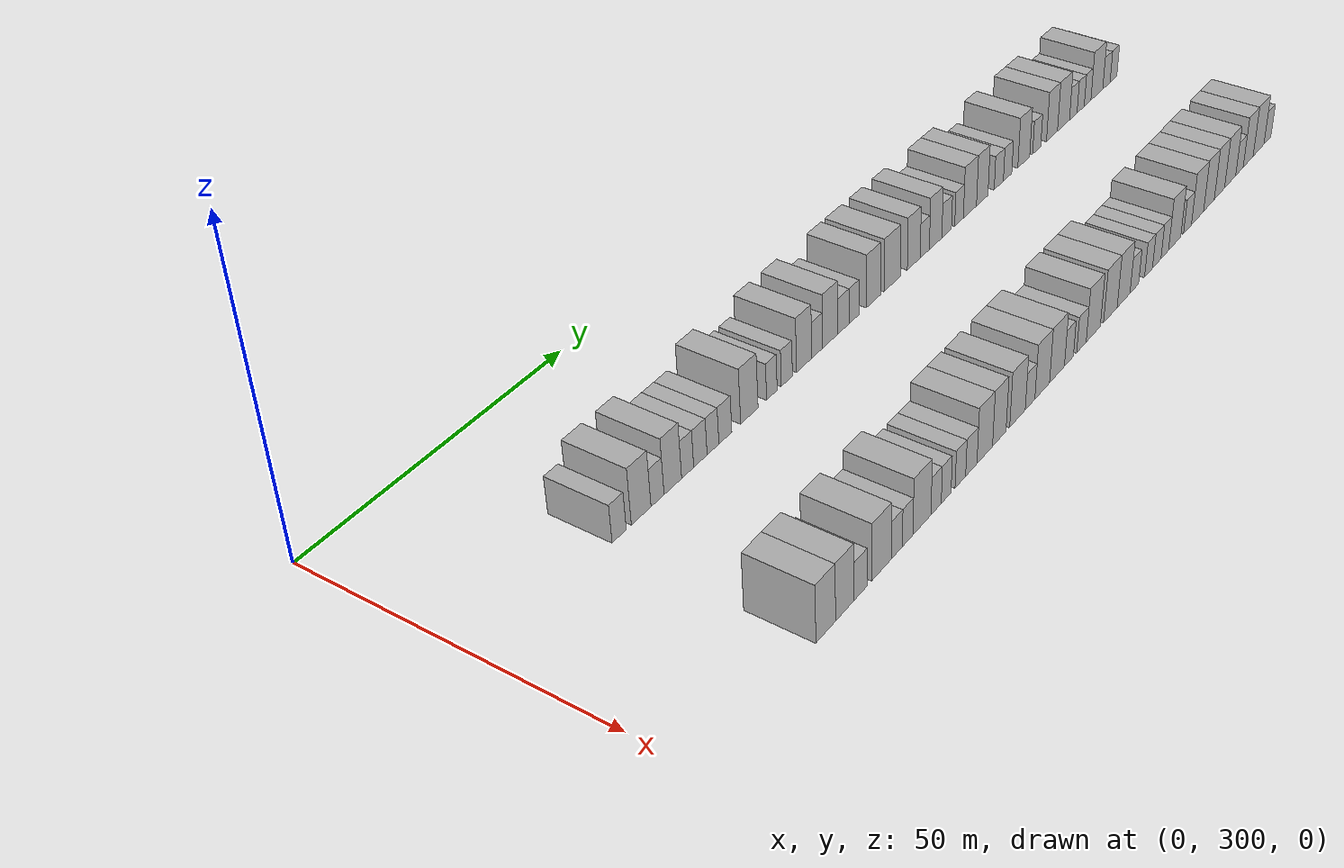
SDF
<sdf version="1.6">
 <world name="default">
  <model name="building_183">
   <static>1</static>
   <pose>25.0000 324.4530 0 0.000000 0.000000 0.000000</pose>
   <link name="link">
    <pose>0 0 3.00 0 0 0</pose>
    <collision name="collision"><geometry><box><size>10.0000 2.7959 6.0000</size></box></geometry></collision>
    <visual name="visual">
     <cast_shadows>0</cast_shadows>
     <geometry><box><size>10.0000 2.7959 6.0000</size></box></geometry>
     <material>
      <script>
       <uri>model://HANNAS_wall/materials/scripts</uri>
       <uri>model://HANNAS_wall/materials/textures</uri>
       <name>vrc/HANNAS_wall</name>
      </script>
     </material>
    </visual>
   </link>
  </model>
  <model name="building_184">
   <static>1</static>
   <pose>25.0000 328.8243 0 0.000000 0.000000 0.000000</pose>
   <link name="link">
    <pose>0 0 4.50 0 0 0</pose>
    <collision name="collision"><geometry><box><size>10.0000 3.9466 9.0000</size></box></geometry></collision>
    <visual name="visual">
     <cast_shadows>0</cast_shadows>
     <geometry><box><size>10.0000 3.9466 9.0000</size></box></geometry>
     <material>
      <script>
       <uri>model://HANNAS_wall/materials/scripts</uri>
       <uri>model://HANNAS_wall/materials/textures</uri>
       <name>vrc/HANNAS_wall</name>
      </script>
     </material>
    </visual>
   </link>
  </model>
  <model name="building_185">
   <static>1</static>
   <pose>25.0000 332.1337 0 0.000000 0.000000 0.000000</pose>
   <link name="link">
    <pose>0 0 3.00 0 0 0</pose>
    <collision name="collision"><geometry><box><size>10.0000 2.6721 6.0000</size></box></geometry></collision>
    <visual name="visual">
     <cast_shadows>0</cast_shadows>
     <geometry><box><size>10.0000 2.6721 6.0000</size></box></geometry>
     <material>
      <script>
       <uri>model://HANNAS_wall/materials/scripts</uri>
       <uri>model://HANNAS_wall/materials/textures</uri>
       <name>vrc/HANNAS_wall</name>
      </script>
     </material>
    </visual>
   </link>
  </model>
  <model name="building_186">
   <static>1</static>
   <pose>25.0000 335.3064 0 0.000000 0.000000 0.000000</pose>
   <link name="link">
    <pose>0 0 4.50 0 0 0</pose>
    <collision name="collision"><geometry><box><size>10.0000 3.6734 9.0000</size></box></geometry></collision>
    <visual name="visual">
     <cast_shadows>0</cast_shadows>
     <geometry><box><size>10.0000 3.6734 9.0000</size></box></geometry>
     <material>
      <script>
       <uri>model://HANNAS_wall/materials/scripts</uri>
       <uri>model://HANNAS_wall/materials/textures</uri>
       <name>vrc/HANNAS_wall</name>
      </script>
     </material>
    </visual>
   </link>
  </model>
  <model name="building_187">
   <static>1</static>
   <pose>25.0000 338.4272 0 0.000000 0.000000 0.000000</pose>
   <link name="link">
    <pose>0 0 3.00 0 0 0</pose>
    <collision name="collision"><geometry><box><size>10.0000 2.5681 6.0000</size></box></geometry></collision>
    <visual name="visual">
     <cast_shadows>0</cast_shadows>
     <geometry><box><size>10.0000 2.5681 6.0000</size></box></geometry>
     <material>
      <script>
       <uri>model://HANNAS_wall/materials/scripts</uri>
       <uri>model://HANNAS_wall/materials/textures</uri>
       <name>vrc/HANNAS_wall</name>
      </script>
     </material>
    </visual>
   </link>
  </model>
  <model name="building_188">
   <static>1</static>
   <pose>25.0000 341.1565 0 0.000000 0.000000 0.000000</pose>
   <link name="link">
    <pose>0 0 3.00 0 0 0</pose>
    <collision name="collision"><geometry><box><size>10.0000 2.8906 6.0000</size></box></geometry></collision>
    <visual name="visual">
     <cast_shadows>0</cast_shadows>
     <geometry><box><size>10.0000 2.8906 6.0000</size></box></geometry>
     <material>
      <script>
       <uri>model://HANNAS_wall/materials/scripts</uri>
       <uri>model://HANNAS_wall/materials/textures</uri>
       <name>vrc/HANNAS_wall</name>
      </script>
     </material>
    </visual>
   </link>
  </model>
  <model name="building_189">
   <static>1</static>
   <pose>25.0000 343.8933 0 0.000000 0.000000 0.000000</pose>
   <link name="link">
    <pose>0 0 3.00 0 0 0</pose>
    <collision name="collision"><geometry><box><size>10.0000 2.5829 6.0000</size></box></geometry></collision>
    <visual name="visual">
     <cast_shadows>0</cast_shadows>
     <geometry><box><size>10.0000 2.5829 6.0000</size></box></geometry>
     <material>
      <script>
       <uri>model://HANNAS_wall/materials/scripts</uri>
       <uri>model://HANNAS_wall/materials/textures</uri>
       <name>vrc/HANNAS_wall</name>
      </script>
     </material>
    </visual>
   </link>
  </model>
  <model name="building_190">
   <static>1</static>
   <pose>25.0000 346.6219 0 0.000000 0.000000 0.000000</pose>
   <link name="link">
    <pose>0 0 3.00 0 0 0</pose>
    <collision name="collision"><geometry><box><size>10.0000 2.8744 6.0000</size></box></geometry></collision>
    <visual name="visual">
     <cast_shadows>0</cast_shadows>
     <geometry><box><size>10.0000 2.8744 6.0000</size></box></geometry>
     <material>
      <script>
       <uri>model://HANNAS_wall/materials/scripts</uri>
       <uri>model://HANNAS_wall/materials/textures</uri>
       <name>vrc/HANNAS_wall</name>
      </script>
     </material>
    </visual>
   </link>
  </model>
  <model name="building_191">
   <static>1</static>
   <pose>25.0000 352.0502 0 0.000000 0.000000 0.000000</pose>
   <link name="link">
    <pose>0 0 4.50 0 0 0</pose>
    <collision name="collision"><geometry><box><size>10.0000 3.9823 9.0000</size></box></geometry></collision>
    <visual name="visual">
     <cast_shadows>0</cast_shadows>
     <geometry><box><size>10.0000 3.9823 9.0000</size></box></geometry>
     <material>
      <script>
       <uri>model://HANNAS_wall/materials/scripts</uri>
       <uri>model://HANNAS_wall/materials/textures</uri>
       <name>vrc/HANNAS_wall</name>
      </script>
     </material>
    </visual>
   </link>
  </model>
  <model name="building_192">
   <static>1</static>
   <pose>25.0000 357.2809 0 0.000000 0.000000 0.000000</pose>
   <link name="link">
    <pose>0 0 3.00 0 0 0</pose>
    <collision name="collision"><geometry><box><size>10.0000 2.4790 6.0000</size></box></geometry></collision>
    <visual name="visual">
     <cast_shadows>0</cast_shadows>
     <geometry><box><size>10.0000 2.4790 6.0000</size></box></geometry>
     <material>
      <script>
       <uri>model://HANNAS_wall/materials/scripts</uri>
       <uri>model://HANNAS_wall/materials/textures</uri>
       <name>vrc/HANNAS_wall</name>
      </script>
     </material>
    </visual>
   </link>
  </model>
  <model name="building_193">
   <static>1</static>
   <pose>25.0000 360.8533 0 0.000000 0.000000 0.000000</pose>
   <link name="link">
    <pose>0 0 3.00 0 0 0</pose>
    <collision name="collision"><geometry><box><size>10.0000 2.6658 6.0000</size></box></geometry></collision>
    <visual name="visual">
     <cast_shadows>0</cast_shadows>
     <geometry><box><size>10.0000 2.6658 6.0000</size></box></geometry>
     <material>
      <script>
       <uri>model://HANNAS_wall/materials/scripts</uri>
       <uri>model://HANNAS_wall/materials/textures</uri>
       <name>vrc/HANNAS_wall</name>
      </script>
     </material>
    </visual>
   </link>
  </model>
  <model name="building_194">
   <static>1</static>
   <pose>25.0000 365.0553 0 0.000000 0.000000 0.000000</pose>
   <link name="link">
    <pose>0 0 4.50 0 0 0</pose>
    <collision name="collision"><geometry><box><size>10.0000 3.7382 9.0000</size></box></geometry></collision>
    <visual name="visual">
     <cast_shadows>0</cast_shadows>
     <geometry><box><size>10.0000 3.7382 9.0000</size></box></geometry>
     <material>
      <script>
       <uri>model://HANNAS_wall/materials/scripts</uri>
       <uri>model://HANNAS_wall/materials/textures</uri>
       <name>vrc/HANNAS_wall</name>
      </script>
     </material>
    </visual>
   </link>
  </model>
  <model name="building_195">
   <static>1</static>
   <pose>25.0000 368.2762 0 0.000000 0.000000 0.000000</pose>
   <link name="link">
    <pose>0 0 3.00 0 0 0</pose>
    <collision name="collision"><geometry><box><size>10.0000 2.7036 6.0000</size></box></geometry></collision>
    <visual name="visual">
     <cast_shadows>0</cast_shadows>
     <geometry><box><size>10.0000 2.7036 6.0000</size></box></geometry>
     <material>
      <script>
       <uri>model://HANNAS_wall/materials/scripts</uri>
       <uri>model://HANNAS_wall/materials/textures</uri>
       <name>vrc/HANNAS_wall</name>
      </script>
     </material>
    </visual>
   </link>
  </model>
  <model name="building_196">
   <static>1</static>
   <pose>25.0000 371.5840 0 0.000000 0.000000 0.000000</pose>
   <link name="link">
    <pose>0 0 4.50 0 0 0</pose>
    <collision name="collision"><geometry><box><size>10.0000 3.9121 9.0000</size></box></geometry></collision>
    <visual name="visual">
     <cast_shadows>0</cast_shadows>
     <geometry><box><size>10.0000 3.9121 9.0000</size></box></geometry>
     <material>
      <script>
       <uri>model://HANNAS_wall/materials/scripts</uri>
       <uri>model://HANNAS_wall/materials/textures</uri>
       <name>vrc/HANNAS_wall</name>
      </script>
     </material>
    </visual>
   </link>
  </model>
  <model name="building_197">
   <static>1</static>
   <pose>25.0000 374.9932 0 0.000000 0.000000 0.000000</pose>
   <link name="link">
    <pose>0 0 3.00 0 0 0</pose>
    <collision name="collision"><geometry><box><size>10.0000 2.9063 6.0000</size></box></geometry></collision>
    <visual name="visual">
     <cast_shadows>0</cast_shadows>
     <geometry><box><size>10.0000 2.9063 6.0000</size></box></geometry>
     <material>
      <script>
       <uri>model://HANNAS_wall/materials/scripts</uri>
       <uri>model://HANNAS_wall/materials/textures</uri>
       <name>vrc/HANNAS_wall</name>
      </script>
     </material>
    </visual>
   </link>
  </model>
  <model name="building_198">
   <static>1</static>
   <pose>25.0000 377.7450 0 0.000000 0.000000 0.000000</pose>
   <link name="link">
    <pose>0 0 3.00 0 0 0</pose>
    <collision name="collision"><geometry><box><size>10.0000 2.5972 6.0000</size></box></geometry></collision>
    <visual name="visual">
     <cast_shadows>0</cast_shadows>
     <geometry><box><size>10.0000 2.5972 6.0000</size></box></geometry>
     <material>
      <script>
       <uri>model://HANNAS_wall/materials/scripts</uri>
       <uri>model://HANNAS_wall/materials/textures</uri>
       <name>vrc/HANNAS_wall</name>
      </script>
     </material>
    </visual>
   </link>
  </model>
  <model name="building_199">
   <static>1</static>
   <pose>25.0000 382.9122 0 0.000000 0.000000 0.000000</pose>
   <link name="link">
    <pose>0 0 4.50 0 0 0</pose>
    <collision name="collision"><geometry><box><size>10.0000 3.7371 9.0000</size></box></geometry></collision>
    <visual name="visual">
     <cast_shadows>0</cast_shadows>
     <geometry><box><size>10.0000 3.7371 9.0000</size></box></geometry>
     <material>
      <script>
       <uri>model://HANNAS_wall/materials/scripts</uri>
       <uri>model://HANNAS_wall/materials/textures</uri>
       <name>vrc/HANNAS_wall</name>
      </script>
     </material>
    </visual>
   </link>
  </model>
  <model name="building_200">
   <static>1</static>
   <pose>25.0000 388.0035 0 0.000000 0.000000 0.000000</pose>
   <link name="link">
    <pose>0 0 4.50 0 0 0</pose>
    <collision name="collision"><geometry><box><size>10.0000 4.4454 9.0000</size></box></geometry></collision>
    <visual name="visual">
     <cast_shadows>0</cast_shadows>
     <geometry><box><size>10.0000 4.4454 9.0000</size></box></geometry>
     <material>
      <script>
       <uri>model://HANNAS_wall/materials/scripts</uri>
       <uri>model://HANNAS_wall/materials/textures</uri>
       <name>vrc/HANNAS_wall</name>
      </script>
     </material>
    </visual>
   </link>
  </model>
  <model name="building_201">
   <static>1</static>
   <pose>25.0000 394.0466 0 0.000000 0.000000 0.000000</pose>
   <link name="link">
    <pose>0 0 4.50 0 0 0</pose>
    <collision name="collision"><geometry><box><size>10.0000 3.6409 9.0000</size></box></geometry></collision>
    <visual name="visual">
     <cast_shadows>0</cast_shadows>
     <geometry><box><size>10.0000 3.6409 9.0000</size></box></geometry>
     <material>
      <script>
       <uri>model://HANNAS_wall/materials/scripts</uri>
       <uri>model://HANNAS_wall/materials/textures</uri>
       <name>vrc/HANNAS_wall</name>
      </script>
     </material>
    </visual>
   </link>
  </model>
  <model name="building_202">
   <static>1</static>
   <pose>25.0000 397.2003 0 0.000000 0.000000 0.000000</pose>
   <link name="link">
    <pose>0 0 3.00 0 0 0</pose>
    <collision name="collision"><geometry><box><size>10.0000 2.6664 6.0000</size></box></geometry></collision>
    <visual name="visual">
     <cast_shadows>0</cast_shadows>
     <geometry><box><size>10.0000 2.6664 6.0000</size></box></geometry>
     <material>
      <script>
       <uri>model://HANNAS_wall/materials/scripts</uri>
       <uri>model://HANNAS_wall/materials/textures</uri>
       <name>vrc/HANNAS_wall</name>
      </script>
     </material>
    </visual>
   </link>
  </model>
  <model name="building_203">
   <static>1</static>
   <pose>25.0000 400.3705 0 0.000000 0.000000 0.000000</pose>
   <link name="link">
    <pose>0 0 4.50 0 0 0</pose>
    <collision name="collision"><geometry><box><size>10.0000 3.6742 9.0000</size></box></geometry></collision>
    <visual name="visual">
     <cast_shadows>0</cast_shadows>
     <geometry><box><size>10.0000 3.6742 9.0000</size></box></geometry>
     <material>
      <script>
       <uri>model://HANNAS_wall/materials/scripts</uri>
       <uri>model://HANNAS_wall/materials/textures</uri>
       <name>vrc/HANNAS_wall</name>
      </script>
     </material>
    </visual>
   </link>
  </model>
  <model name="building_204">
   <static>1</static>
   <pose>25.0000 403.6401 0 0.000000 0.000000 0.000000</pose>
   <link name="link">
    <pose>0 0 3.00 0 0 0</pose>
    <collision name="collision"><geometry><box><size>10.0000 2.8650 6.0000</size></box></geometry></collision>
    <visual name="visual">
     <cast_shadows>0</cast_shadows>
     <geometry><box><size>10.0000 2.8650 6.0000</size></box></geometry>
     <material>
      <script>
       <uri>model://HANNAS_wall/materials/scripts</uri>
       <uri>model://HANNAS_wall/materials/textures</uri>
       <name>vrc/HANNAS_wall</name>
      </script>
     </material>
    </visual>
   </link>
  </model>
  <model name="building_205">
   <static>1</static>
   <pose>25.0000 407.3834 0 0.000000 0.000000 0.000000</pose>
   <link name="link">
    <pose>0 0 3.00 0 0 0</pose>
    <collision name="collision"><geometry><box><size>10.0000 2.6217 6.0000</size></box></geometry></collision>
    <visual name="visual">
     <cast_shadows>0</cast_shadows>
     <geometry><box><size>10.0000 2.6217 6.0000</size></box></geometry>
     <material>
      <script>
       <uri>model://HANNAS_wall/materials/scripts</uri>
       <uri>model://HANNAS_wall/materials/textures</uri>
       <name>vrc/HANNAS_wall</name>
      </script>
     </material>
    </visual>
   </link>
  </model>
  <model name="building_206">
   <static>1</static>
   <pose>25.0000 410.7173 0 0.000000 0.000000 0.000000</pose>
   <link name="link">
    <pose>0 0 4.50 0 0 0</pose>
    <collision name="collision"><geometry><box><size>10.0000 4.0461 9.0000</size></box></geometry></collision>
    <visual name="visual">
     <cast_shadows>0</cast_shadows>
     <geometry><box><size>10.0000 4.0461 9.0000</size></box></geometry>
     <material>
      <script>
       <uri>model://HANNAS_wall/materials/scripts</uri>
       <uri>model://HANNAS_wall/materials/textures</uri>
       <name>vrc/HANNAS_wall</name>
      </script>
     </material>
    </visual>
   </link>
  </model>
  <model name="building_207">
   <static>1</static>
   <pose>25.0000 414.5434 0 0.000000 0.000000 0.000000</pose>
   <link name="link">
    <pose>0 0 4.50 0 0 0</pose>
    <collision name="collision"><geometry><box><size>10.0000 3.6061 9.0000</size></box></geometry></collision>
    <visual name="visual">
     <cast_shadows>0</cast_shadows>
     <geometry><box><size>10.0000 3.6061 9.0000</size></box></geometry>
     <material>
      <script>
       <uri>model://HANNAS_wall/materials/scripts</uri>
       <uri>model://HANNAS_wall/materials/textures</uri>
       <name>vrc/HANNAS_wall</name>
      </script>
     </material>
    </visual>
   </link>
  </model>
  <model name="building_208">
   <static>1</static>
   <pose>25.0000 419.8167 0 0.000000 0.000000 0.000000</pose>
   <link name="link">
    <pose>0 0 3.00 0 0 0</pose>
    <collision name="collision"><geometry><box><size>10.0000 2.9405 6.0000</size></box></geometry></collision>
    <visual name="visual">
     <cast_shadows>0</cast_shadows>
     <geometry><box><size>10.0000 2.9405 6.0000</size></box></geometry>
     <material>
      <script>
       <uri>model://HANNAS_wall/materials/scripts</uri>
       <uri>model://HANNAS_wall/materials/textures</uri>
       <name>vrc/HANNAS_wall</name>
      </script>
     </material>
    </visual>
   </link>
  </model>
  <model name="building_209">
   <static>1</static>
   <pose>25.0000 422.6610 0 0.000000 0.000000 0.000000</pose>
   <link name="link">
    <pose>0 0 3.00 0 0 0</pose>
    <collision name="collision"><geometry><box><size>10.0000 2.7481 6.0000</size></box></geometry></collision>
    <visual name="visual">
     <cast_shadows>0</cast_shadows>
     <geometry><box><size>10.0000 2.7481 6.0000</size></box></geometry>
     <material>
      <script>
       <uri>model://HANNAS_wall/materials/scripts</uri>
       <uri>model://HANNAS_wall/materials/textures</uri>
       <name>vrc/HANNAS_wall</name>
      </script>
     </material>
    </visual>
   </link>
  </model>
  <model name="building_210">
   <static>1</static>
   <pose>25.0000 428.0083 0 0.000000 0.000000 0.000000</pose>
   <link name="link">
    <pose>0 0 4.50 0 0 0</pose>
    <collision name="collision"><geometry><box><size>10.0000 3.9466 9.0000</size></box></geometry></collision>
    <visual name="visual">
     <cast_shadows>0</cast_shadows>
     <geometry><box><size>10.0000 3.9466 9.0000</size></box></geometry>
     <material>
      <script>
       <uri>model://HANNAS_wall/materials/scripts</uri>
       <uri>model://HANNAS_wall/materials/textures</uri>
       <name>vrc/HANNAS_wall</name>
      </script>
     </material>
    </visual>
   </link>
  </model>
  <model name="building_211">
   <static>1</static>
   <pose>25.0000 432.3652 0 0.000000 0.000000 0.000000</pose>
   <link name="link">
    <pose>0 0 3.00 0 0 0</pose>
    <collision name="collision"><geometry><box><size>10.0000 2.7671 6.0000</size></box></geometry></collision>
    <visual name="visual">
     <cast_shadows>0</cast_shadows>
     <geometry><box><size>10.0000 2.7671 6.0000</size></box></geometry>
     <material>
      <script>
       <uri>model://HANNAS_wall/materials/scripts</uri>
       <uri>model://HANNAS_wall/materials/textures</uri>
       <name>vrc/HANNAS_wall</name>
      </script>
     </material>
    </visual>
   </link>
  </model>
  <model name="building_212">
   <static>1</static>
   <pose>25.0000 437.6708 0 0.000000 0.000000 0.000000</pose>
   <link name="link">
    <pose>0 0 4.50 0 0 0</pose>
    <collision name="collision"><geometry><box><size>10.0000 3.8440 9.0000</size></box></geometry></collision>
    <visual name="visual">
     <cast_shadows>0</cast_shadows>
     <geometry><box><size>10.0000 3.8440 9.0000</size></box></geometry>
     <material>
      <script>
       <uri>model://HANNAS_wall/materials/scripts</uri>
       <uri>model://HANNAS_wall/materials/textures</uri>
       <name>vrc/HANNAS_wall</name>
      </script>
     </material>
    </visual>
   </link>
  </model>
  <model name="building_213">
   <static>1</static>
   <pose>25.0000 441.7206 0 0.000000 0.000000 0.000000</pose>
   <link name="link">
    <pose>0 0 4.50 0 0 0</pose>
    <collision name="collision"><geometry><box><size>10.0000 4.2556 9.0000</size></box></geometry></collision>
    <visual name="visual">
     <cast_shadows>0</cast_shadows>
     <geometry><box><size>10.0000 4.2556 9.0000</size></box></geometry>
     <material>
      <script>
       <uri>model://HANNAS_wall/materials/scripts</uri>
       <uri>model://HANNAS_wall/materials/textures</uri>
       <name>vrc/HANNAS_wall</name>
      </script>
     </material>
    </visual>
   </link>
  </model>
  <model name="building_214">
   <static>1</static>
   <pose>25.0000 445.2170 0 0.000000 0.000000 0.000000</pose>
   <link name="link">
    <pose>0 0 3.00 0 0 0</pose>
    <collision name="collision"><geometry><box><size>10.0000 2.7374 6.0000</size></box></geometry></collision>
    <visual name="visual">
     <cast_shadows>0</cast_shadows>
     <geometry><box><size>10.0000 2.7374 6.0000</size></box></geometry>
     <material>
      <script>
       <uri>model://HANNAS_wall/materials/scripts</uri>
       <uri>model://HANNAS_wall/materials/textures</uri>
       <name>vrc/HANNAS_wall</name>
      </script>
     </material>
    </visual>
   </link>
  </model>
  <model name="building_215">
   <static>1</static>
   <pose>25.0000 447.8943 0 0.000000 0.000000 0.000000</pose>
   <link name="link">
    <pose>0 0 3.00 0 0 0</pose>
    <collision name="collision"><geometry><box><size>10.0000 2.6172 6.0000</size></box></geometry></collision>
    <visual name="visual">
     <cast_shadows>0</cast_shadows>
     <geometry><box><size>10.0000 2.6172 6.0000</size></box></geometry>
     <material>
      <script>
       <uri>model://HANNAS_wall/materials/scripts</uri>
       <uri>model://HANNAS_wall/materials/textures</uri>
       <name>vrc/HANNAS_wall</name>
      </script>
     </material>
    </visual>
   </link>
  </model>
  <model name="building_216">
   <static>1</static>
   <pose>25.0000 450.4375 0 0.000000 0.000000 0.000000</pose>
   <link name="link">
    <pose>0 0 3.00 0 0 0</pose>
    <collision name="collision"><geometry><box><size>10.0000 2.4692 6.0000</size></box></geometry></collision>
    <visual name="visual">
     <cast_shadows>0</cast_shadows>
     <geometry><box><size>10.0000 2.4692 6.0000</size></box></geometry>
     <material>
      <script>
       <uri>model://HANNAS_wall/materials/scripts</uri>
       <uri>model://HANNAS_wall/materials/textures</uri>
       <name>vrc/HANNAS_wall</name>
      </script>
     </material>
    </visual>
   </link>
  </model>
  <model name="building_217">
   <static>1</static>
   <pose>25.0000 453.8956 0 0.000000 0.000000 0.000000</pose>
   <link name="link">
    <pose>0 0 4.50 0 0 0</pose>
    <collision name="collision"><geometry><box><size>10.0000 4.4469 9.0000</size></box></geometry></collision>
    <visual name="visual">
     <cast_shadows>0</cast_shadows>
     <geometry><box><size>10.0000 4.4469 9.0000</size></box></geometry>
     <material>
      <script>
       <uri>model://HANNAS_wall/materials/scripts</uri>
       <uri>model://HANNAS_wall/materials/textures</uri>
       <name>vrc/HANNAS_wall</name>
      </script>
     </material>
    </visual>
   </link>
  </model>
  <model name="building_218">
   <static>1</static>
   <pose>25.0000 457.5079 0 0.000000 0.000000 0.000000</pose>
   <link name="link">
    <pose>0 0 3.00 0 0 0</pose>
    <collision name="collision"><geometry><box><size>10.0000 2.7778 6.0000</size></box></geometry></collision>
    <visual name="visual">
     <cast_shadows>0</cast_shadows>
     <geometry><box><size>10.0000 2.7778 6.0000</size></box></geometry>
     <material>
      <script>
       <uri>model://HANNAS_wall/materials/scripts</uri>
       <uri>model://HANNAS_wall/materials/textures</uri>
       <name>vrc/HANNAS_wall</name>
      </script>
     </material>
    </visual>
   </link>
  </model>
  <model name="building_219">
   <static>1</static>
   <pose>25.0000 460.2032 0 0.000000 0.000000 0.000000</pose>
   <link name="link">
    <pose>0 0 3.00 0 0 0</pose>
    <collision name="collision"><geometry><box><size>10.0000 2.6128 6.0000</size></box></geometry></collision>
    <visual name="visual">
     <cast_shadows>0</cast_shadows>
     <geometry><box><size>10.0000 2.6128 6.0000</size></box></geometry>
     <material>
      <script>
       <uri>model://HANNAS_wall/materials/scripts</uri>
       <uri>model://HANNAS_wall/materials/textures</uri>
       <name>vrc/HANNAS_wall</name>
      </script>
     </material>
    </visual>
   </link>
  </model>
  <model name="building_425">
   <static>1</static>
   <pose>55.0000 324.1986 0 0.000000 0.000000 0.000000</pose>
   <link name="link">
    <pose>0 0 4.50 0 0 0</pose>
    <collision name="collision"><geometry><box><size>10.0000 4.1310 9.0000</size></box></geometry></collision>
    <visual name="visual">
     <cast_shadows>0</cast_shadows>
     <geometry><box><size>10.0000 4.1310 9.0000</size></box></geometry>
     <material>
      <script>
       <uri>model://HANNAS_wall/materials/scripts</uri>
       <uri>model://HANNAS_wall/materials/textures</uri>
       <name>vrc/HANNAS_wall</name>
      </script>
     </material>
    </visual>
   </link>
  </model>
  <model name="building_426">
   <static>1</static>
   <pose>55.0000 328.2507 0 0.000000 0.000000 0.000000</pose>
   <link name="link">
    <pose>0 0 4.50 0 0 0</pose>
    <collision name="collision"><geometry><box><size>10.0000 3.9731 9.0000</size></box></geometry></collision>
    <visual name="visual">
     <cast_shadows>0</cast_shadows>
     <geometry><box><size>10.0000 3.9731 9.0000</size></box></geometry>
     <material>
      <script>
       <uri>model://HANNAS_wall/materials/scripts</uri>
       <uri>model://HANNAS_wall/materials/textures</uri>
       <name>vrc/HANNAS_wall</name>
      </script>
     </material>
    </visual>
   </link>
  </model>
  <model name="building_427">
   <static>1</static>
   <pose>55.0000 331.7019 0 0.000000 0.000000 0.000000</pose>
   <link name="link">
    <pose>0 0 3.00 0 0 0</pose>
    <collision name="collision"><geometry><box><size>10.0000 2.9294 6.0000</size></box></geometry></collision>
    <visual name="visual">
     <cast_shadows>0</cast_shadows>
     <geometry><box><size>10.0000 2.9294 6.0000</size></box></geometry>
     <material>
      <script>
       <uri>model://HANNAS_wall/materials/scripts</uri>
       <uri>model://HANNAS_wall/materials/textures</uri>
       <name>vrc/HANNAS_wall</name>
      </script>
     </material>
    </visual>
   </link>
  </model>
  <model name="building_428">
   <static>1</static>
   <pose>55.0000 336.3575 0 0.000000 0.000000 0.000000</pose>
   <link name="link">
    <pose>0 0 4.50 0 0 0</pose>
    <collision name="collision"><geometry><box><size>10.0000 4.3818 9.0000</size></box></geometry></collision>
    <visual name="visual">
     <cast_shadows>0</cast_shadows>
     <geometry><box><size>10.0000 4.3818 9.0000</size></box></geometry>
     <material>
      <script>
       <uri>model://HANNAS_wall/materials/scripts</uri>
       <uri>model://HANNAS_wall/materials/textures</uri>
       <name>vrc/HANNAS_wall</name>
      </script>
     </material>
    </visual>
   </link>
  </model>
  <model name="building_429">
   <static>1</static>
   <pose>55.0000 339.8276 0 0.000000 0.000000 0.000000</pose>
   <link name="link">
    <pose>0 0 3.00 0 0 0</pose>
    <collision name="collision"><geometry><box><size>10.0000 2.5583 6.0000</size></box></geometry></collision>
    <visual name="visual">
     <cast_shadows>0</cast_shadows>
     <geometry><box><size>10.0000 2.5583 6.0000</size></box></geometry>
     <material>
      <script>
       <uri>model://HANNAS_wall/materials/scripts</uri>
       <uri>model://HANNAS_wall/materials/textures</uri>
       <name>vrc/HANNAS_wall</name>
      </script>
     </material>
    </visual>
   </link>
  </model>
  <model name="building_430">
   <static>1</static>
   <pose>55.0000 342.3475 0 0.000000 0.000000 0.000000</pose>
   <link name="link">
    <pose>0 0 3.00 0 0 0</pose>
    <collision name="collision"><geometry><box><size>10.0000 2.4814 6.0000</size></box></geometry></collision>
    <visual name="visual">
     <cast_shadows>0</cast_shadows>
     <geometry><box><size>10.0000 2.4814 6.0000</size></box></geometry>
     <material>
      <script>
       <uri>model://HANNAS_wall/materials/scripts</uri>
       <uri>model://HANNAS_wall/materials/textures</uri>
       <name>vrc/HANNAS_wall</name>
      </script>
     </material>
    </visual>
   </link>
  </model>
  <model name="building_431">
   <static>1</static>
   <pose>55.0000 345.7428 0 0.000000 0.000000 0.000000</pose>
   <link name="link">
    <pose>0 0 4.50 0 0 0</pose>
    <collision name="collision"><geometry><box><size>10.0000 4.3092 9.0000</size></box></geometry></collision>
    <visual name="visual">
     <cast_shadows>0</cast_shadows>
     <geometry><box><size>10.0000 4.3092 9.0000</size></box></geometry>
     <material>
      <script>
       <uri>model://HANNAS_wall/materials/scripts</uri>
       <uri>model://HANNAS_wall/materials/textures</uri>
       <name>vrc/HANNAS_wall</name>
      </script>
     </material>
    </visual>
   </link>
  </model>
  <model name="building_432">
   <static>1</static>
   <pose>55.0000 349.1672 0 0.000000 0.000000 0.000000</pose>
   <link name="link">
    <pose>0 0 3.00 0 0 0</pose>
    <collision name="collision"><geometry><box><size>10.0000 2.5396 6.0000</size></box></geometry></collision>
    <visual name="visual">
     <cast_shadows>0</cast_shadows>
     <geometry><box><size>10.0000 2.5396 6.0000</size></box></geometry>
     <material>
      <script>
       <uri>model://HANNAS_wall/materials/scripts</uri>
       <uri>model://HANNAS_wall/materials/textures</uri>
       <name>vrc/HANNAS_wall</name>
      </script>
     </material>
    </visual>
   </link>
  </model>
  <model name="building_433">
   <static>1</static>
   <pose>55.0000 351.6518 0 0.000000 0.000000 0.000000</pose>
   <link name="link">
    <pose>0 0 3.00 0 0 0</pose>
    <collision name="collision"><geometry><box><size>10.0000 2.4297 6.0000</size></box></geometry></collision>
    <visual name="visual">
     <cast_shadows>0</cast_shadows>
     <geometry><box><size>10.0000 2.4297 6.0000</size></box></geometry>
     <material>
      <script>
       <uri>model://HANNAS_wall/materials/scripts</uri>
       <uri>model://HANNAS_wall/materials/textures</uri>
       <name>vrc/HANNAS_wall</name>
      </script>
     </material>
    </visual>
   </link>
  </model>
  <model name="building_434">
   <static>1</static>
   <pose>55.0000 355.2017 0 0.000000 0.000000 0.000000</pose>
   <link name="link">
    <pose>0 0 3.00 0 0 0</pose>
    <collision name="collision"><geometry><box><size>10.0000 2.6699 6.0000</size></box></geometry></collision>
    <visual name="visual">
     <cast_shadows>0</cast_shadows>
     <geometry><box><size>10.0000 2.6699 6.0000</size></box></geometry>
     <material>
      <script>
       <uri>model://HANNAS_wall/materials/scripts</uri>
       <uri>model://HANNAS_wall/materials/textures</uri>
       <name>vrc/HANNAS_wall</name>
      </script>
     </material>
    </visual>
   </link>
  </model>
  <model name="building_435">
   <static>1</static>
   <pose>55.0000 357.9917 0 0.000000 0.000000 0.000000</pose>
   <link name="link">
    <pose>0 0 3.00 0 0 0</pose>
    <collision name="collision"><geometry><box><size>10.0000 2.9101 6.0000</size></box></geometry></collision>
    <visual name="visual">
     <cast_shadows>0</cast_shadows>
     <geometry><box><size>10.0000 2.9101 6.0000</size></box></geometry>
     <material>
      <script>
       <uri>model://HANNAS_wall/materials/scripts</uri>
       <uri>model://HANNAS_wall/materials/textures</uri>
       <name>vrc/HANNAS_wall</name>
      </script>
     </material>
    </visual>
   </link>
  </model>
  <model name="building_436">
   <static>1</static>
   <pose>55.0000 361.4848 0 0.000000 0.000000 0.000000</pose>
   <link name="link">
    <pose>0 0 4.50 0 0 0</pose>
    <collision name="collision"><geometry><box><size>10.0000 4.0761 9.0000</size></box></geometry></collision>
    <visual name="visual">
     <cast_shadows>0</cast_shadows>
     <geometry><box><size>10.0000 4.0761 9.0000</size></box></geometry>
     <material>
      <script>
       <uri>model://HANNAS_wall/materials/scripts</uri>
       <uri>model://HANNAS_wall/materials/textures</uri>
       <name>vrc/HANNAS_wall</name>
      </script>
     </material>
    </visual>
   </link>
  </model>
  <model name="building_437">
   <static>1</static>
   <pose>55.0000 365.3266 0 0.000000 0.000000 0.000000</pose>
   <link name="link">
    <pose>0 0 4.50 0 0 0</pose>
    <collision name="collision"><geometry><box><size>10.0000 3.6076 9.0000</size></box></geometry></collision>
    <visual name="visual">
     <cast_shadows>0</cast_shadows>
     <geometry><box><size>10.0000 3.6076 9.0000</size></box></geometry>
     <material>
      <script>
       <uri>model://HANNAS_wall/materials/scripts</uri>
       <uri>model://HANNAS_wall/materials/textures</uri>
       <name>vrc/HANNAS_wall</name>
      </script>
     </material>
    </visual>
   </link>
  </model>
  <model name="building_438">
   <static>1</static>
   <pose>55.0000 370.2720 0 0.000000 0.000000 0.000000</pose>
   <link name="link">
    <pose>0 0 4.50 0 0 0</pose>
    <collision name="collision"><geometry><box><size>10.0000 4.2832 9.0000</size></box></geometry></collision>
    <visual name="visual">
     <cast_shadows>0</cast_shadows>
     <geometry><box><size>10.0000 4.2832 9.0000</size></box></geometry>
     <material>
      <script>
       <uri>model://HANNAS_wall/materials/scripts</uri>
       <uri>model://HANNAS_wall/materials/textures</uri>
       <name>vrc/HANNAS_wall</name>
      </script>
     </material>
    </visual>
   </link>
  </model>
  <model name="building_439">
   <static>1</static>
   <pose>55.0000 373.7590 0 0.000000 0.000000 0.000000</pose>
   <link name="link">
    <pose>0 0 3.00 0 0 0</pose>
    <collision name="collision"><geometry><box><size>10.0000 2.6906 6.0000</size></box></geometry></collision>
    <visual name="visual">
     <cast_shadows>0</cast_shadows>
     <geometry><box><size>10.0000 2.6906 6.0000</size></box></geometry>
     <material>
      <script>
       <uri>model://HANNAS_wall/materials/scripts</uri>
       <uri>model://HANNAS_wall/materials/textures</uri>
       <name>vrc/HANNAS_wall</name>
      </script>
     </material>
    </visual>
   </link>
  </model>
  <model name="building_440">
   <static>1</static>
   <pose>55.0000 377.2001 0 0.000000 0.000000 0.000000</pose>
   <link name="link">
    <pose>0 0 4.50 0 0 0</pose>
    <collision name="collision"><geometry><box><size>10.0000 4.1916 9.0000</size></box></geometry></collision>
    <visual name="visual">
     <cast_shadows>0</cast_shadows>
     <geometry><box><size>10.0000 4.1916 9.0000</size></box></geometry>
     <material>
      <script>
       <uri>model://HANNAS_wall/materials/scripts</uri>
       <uri>model://HANNAS_wall/materials/textures</uri>
       <name>vrc/HANNAS_wall</name>
      </script>
     </material>
    </visual>
   </link>
  </model>
  <model name="building_441">
   <static>1</static>
   <pose>55.0000 381.4777 0 0.000000 0.000000 0.000000</pose>
   <link name="link">
    <pose>0 0 4.50 0 0 0</pose>
    <collision name="collision"><geometry><box><size>10.0000 4.3636 9.0000</size></box></geometry></collision>
    <visual name="visual">
     <cast_shadows>0</cast_shadows>
     <geometry><box><size>10.0000 4.3636 9.0000</size></box></geometry>
     <material>
      <script>
       <uri>model://HANNAS_wall/materials/scripts</uri>
       <uri>model://HANNAS_wall/materials/textures</uri>
       <name>vrc/HANNAS_wall</name>
      </script>
     </material>
    </visual>
   </link>
  </model>
  <model name="building_442">
   <static>1</static>
   <pose>55.0000 384.9890 0 0.000000 0.000000 0.000000</pose>
   <link name="link">
    <pose>0 0 3.00 0 0 0</pose>
    <collision name="collision"><geometry><box><size>10.0000 2.6590 6.0000</size></box></geometry></collision>
    <visual name="visual">
     <cast_shadows>0</cast_shadows>
     <geometry><box><size>10.0000 2.6590 6.0000</size></box></geometry>
     <material>
      <script>
       <uri>model://HANNAS_wall/materials/scripts</uri>
       <uri>model://HANNAS_wall/materials/textures</uri>
       <name>vrc/HANNAS_wall</name>
      </script>
     </material>
    </visual>
   </link>
  </model>
  <model name="building_443">
   <static>1</static>
   <pose>55.0000 388.7585 0 0.000000 0.000000 0.000000</pose>
   <link name="link">
    <pose>0 0 3.00 0 0 0</pose>
    <collision name="collision"><geometry><box><size>10.0000 2.8799 6.0000</size></box></geometry></collision>
    <visual name="visual">
     <cast_shadows>0</cast_shadows>
     <geometry><box><size>10.0000 2.8799 6.0000</size></box></geometry>
     <material>
      <script>
       <uri>model://HANNAS_wall/materials/scripts</uri>
       <uri>model://HANNAS_wall/materials/textures</uri>
       <name>vrc/HANNAS_wall</name>
      </script>
     </material>
    </visual>
   </link>
  </model>
  <model name="building_444">
   <static>1</static>
   <pose>55.0000 392.3841 0 0.000000 0.000000 0.000000</pose>
   <link name="link">
    <pose>0 0 4.50 0 0 0</pose>
    <collision name="collision"><geometry><box><size>10.0000 4.3715 9.0000</size></box></geometry></collision>
    <visual name="visual">
     <cast_shadows>0</cast_shadows>
     <geometry><box><size>10.0000 4.3715 9.0000</size></box></geometry>
     <material>
      <script>
       <uri>model://HANNAS_wall/materials/scripts</uri>
       <uri>model://HANNAS_wall/materials/textures</uri>
       <name>vrc/HANNAS_wall</name>
      </script>
     </material>
    </visual>
   </link>
  </model>
  <model name="building_445">
   <static>1</static>
   <pose>55.0000 397.7430 0 0.000000 0.000000 0.000000</pose>
   <link name="link">
    <pose>0 0 4.50 0 0 0</pose>
    <collision name="collision"><geometry><box><size>10.0000 4.3463 9.0000</size></box></geometry></collision>
    <visual name="visual">
     <cast_shadows>0</cast_shadows>
     <geometry><box><size>10.0000 4.3463 9.0000</size></box></geometry>
     <material>
      <script>
       <uri>model://HANNAS_wall/materials/scripts</uri>
       <uri>model://HANNAS_wall/materials/textures</uri>
       <name>vrc/HANNAS_wall</name>
      </script>
     </material>
    </visual>
   </link>
  </model>
  <model name="building_446">
   <static>1</static>
   <pose>55.0000 402.0016 0 0.000000 0.000000 0.000000</pose>
   <link name="link">
    <pose>0 0 4.50 0 0 0</pose>
    <collision name="collision"><geometry><box><size>10.0000 4.1708 9.0000</size></box></geometry></collision>
    <visual name="visual">
     <cast_shadows>0</cast_shadows>
     <geometry><box><size>10.0000 4.1708 9.0000</size></box></geometry>
     <material>
      <script>
       <uri>model://HANNAS_wall/materials/scripts</uri>
       <uri>model://HANNAS_wall/materials/textures</uri>
       <name>vrc/HANNAS_wall</name>
      </script>
     </material>
    </visual>
   </link>
  </model>
  <model name="building_447">
   <static>1</static>
   <pose>55.0000 405.5051 0 0.000000 0.000000 0.000000</pose>
   <link name="link">
    <pose>0 0 3.00 0 0 0</pose>
    <collision name="collision"><geometry><box><size>10.0000 2.8362 6.0000</size></box></geometry></collision>
    <visual name="visual">
     <cast_shadows>0</cast_shadows>
     <geometry><box><size>10.0000 2.8362 6.0000</size></box></geometry>
     <material>
      <script>
       <uri>model://HANNAS_wall/materials/scripts</uri>
       <uri>model://HANNAS_wall/materials/textures</uri>
       <name>vrc/HANNAS_wall</name>
      </script>
     </material>
    </visual>
   </link>
  </model>
  <model name="building_448">
   <static>1</static>
   <pose>55.0000 410.2640 0 0.000000 0.000000 0.000000</pose>
   <link name="link">
    <pose>0 0 3.00 0 0 0</pose>
    <collision name="collision"><geometry><box><size>10.0000 2.6816 6.0000</size></box></geometry></collision>
    <visual name="visual">
     <cast_shadows>0</cast_shadows>
     <geometry><box><size>10.0000 2.6816 6.0000</size></box></geometry>
     <material>
      <script>
       <uri>model://HANNAS_wall/materials/scripts</uri>
       <uri>model://HANNAS_wall/materials/textures</uri>
       <name>vrc/HANNAS_wall</name>
      </script>
     </material>
    </visual>
   </link>
  </model>
  <model name="building_449">
   <static>1</static>
   <pose>55.0000 413.0694 0 0.000000 0.000000 0.000000</pose>
   <link name="link">
    <pose>0 0 3.00 0 0 0</pose>
    <collision name="collision"><geometry><box><size>10.0000 2.9291 6.0000</size></box></geometry></collision>
    <visual name="visual">
     <cast_shadows>0</cast_shadows>
     <geometry><box><size>10.0000 2.9291 6.0000</size></box></geometry>
     <material>
      <script>
       <uri>model://HANNAS_wall/materials/scripts</uri>
       <uri>model://HANNAS_wall/materials/textures</uri>
       <name>vrc/HANNAS_wall</name>
      </script>
     </material>
    </visual>
   </link>
  </model>
  <model name="building_450">
   <static>1</static>
   <pose>55.0000 415.8365 0 0.000000 0.000000 0.000000</pose>
   <link name="link">
    <pose>0 0 3.00 0 0 0</pose>
    <collision name="collision"><geometry><box><size>10.0000 2.6049 6.0000</size></box></geometry></collision>
    <visual name="visual">
     <cast_shadows>0</cast_shadows>
     <geometry><box><size>10.0000 2.6049 6.0000</size></box></geometry>
     <material>
      <script>
       <uri>model://HANNAS_wall/materials/scripts</uri>
       <uri>model://HANNAS_wall/materials/textures</uri>
       <name>vrc/HANNAS_wall</name>
      </script>
     </material>
    </visual>
   </link>
  </model>
  <model name="building_451">
   <static>1</static>
   <pose>55.0000 419.2997 0 0.000000 0.000000 0.000000</pose>
   <link name="link">
    <pose>0 0 4.50 0 0 0</pose>
    <collision name="collision"><geometry><box><size>10.0000 4.3215 9.0000</size></box></geometry></collision>
    <visual name="visual">
     <cast_shadows>0</cast_shadows>
     <geometry><box><size>10.0000 4.3215 9.0000</size></box></geometry>
     <material>
      <script>
       <uri>model://HANNAS_wall/materials/scripts</uri>
       <uri>model://HANNAS_wall/materials/textures</uri>
       <name>vrc/HANNAS_wall</name>
      </script>
     </material>
    </visual>
   </link>
  </model>
  <model name="building_452">
   <static>1</static>
   <pose>55.0000 423.8899 0 0.000000 0.000000 0.000000</pose>
   <link name="link">
    <pose>0 0 3.00 0 0 0</pose>
    <collision name="collision"><geometry><box><size>10.0000 2.8589 6.0000</size></box></geometry></collision>
    <visual name="visual">
     <cast_shadows>0</cast_shadows>
     <geometry><box><size>10.0000 2.8589 6.0000</size></box></geometry>
     <material>
      <script>
       <uri>model://HANNAS_wall/materials/scripts</uri>
       <uri>model://HANNAS_wall/materials/textures</uri>
       <name>vrc/HANNAS_wall</name>
      </script>
     </material>
    </visual>
   </link>
  </model>
  <model name="building_453">
   <static>1</static>
   <pose>55.0000 427.5524 0 0.000000 0.000000 0.000000</pose>
   <link name="link">
    <pose>0 0 4.50 0 0 0</pose>
    <collision name="collision"><geometry><box><size>10.0000 4.4660 9.0000</size></box></geometry></collision>
    <visual name="visual">
     <cast_shadows>0</cast_shadows>
     <geometry><box><size>10.0000 4.4660 9.0000</size></box></geometry>
     <material>
      <script>
       <uri>model://HANNAS_wall/materials/scripts</uri>
       <uri>model://HANNAS_wall/materials/textures</uri>
       <name>vrc/HANNAS_wall</name>
      </script>
     </material>
    </visual>
   </link>
  </model>
  <model name="building_454">
   <static>1</static>
   <pose>55.0000 431.8089 0 0.000000 0.000000 0.000000</pose>
   <link name="link">
    <pose>0 0 4.50 0 0 0</pose>
    <collision name="collision"><geometry><box><size>10.0000 4.0470 9.0000</size></box></geometry></collision>
    <visual name="visual">
     <cast_shadows>0</cast_shadows>
     <geometry><box><size>10.0000 4.0470 9.0000</size></box></geometry>
     <material>
      <script>
       <uri>model://HANNAS_wall/materials/scripts</uri>
       <uri>model://HANNAS_wall/materials/textures</uri>
       <name>vrc/HANNAS_wall</name>
      </script>
     </material>
    </visual>
   </link>
  </model>
  <model name="building_455">
   <static>1</static>
   <pose>55.0000 435.7930 0 0.000000 0.000000 0.000000</pose>
   <link name="link">
    <pose>0 0 4.50 0 0 0</pose>
    <collision name="collision"><geometry><box><size>10.0000 3.9212 9.0000</size></box></geometry></collision>
    <visual name="visual">
     <cast_shadows>0</cast_shadows>
     <geometry><box><size>10.0000 3.9212 9.0000</size></box></geometry>
     <material>
      <script>
       <uri>model://HANNAS_wall/materials/scripts</uri>
       <uri>model://HANNAS_wall/materials/textures</uri>
       <name>vrc/HANNAS_wall</name>
      </script>
     </material>
    </visual>
   </link>
  </model>
  <model name="building_456">
   <static>1</static>
   <pose>55.0000 439.9235 0 0.000000 0.000000 0.000000</pose>
   <link name="link">
    <pose>0 0 4.50 0 0 0</pose>
    <collision name="collision"><geometry><box><size>10.0000 4.3399 9.0000</size></box></geometry></collision>
    <visual name="visual">
     <cast_shadows>0</cast_shadows>
     <geometry><box><size>10.0000 4.3399 9.0000</size></box></geometry>
     <material>
      <script>
       <uri>model://HANNAS_wall/materials/scripts</uri>
       <uri>model://HANNAS_wall/materials/textures</uri>
       <name>vrc/HANNAS_wall</name>
      </script>
     </material>
    </visual>
   </link>
  </model>
  <model name="building_457">
   <static>1</static>
   <pose>55.0000 443.5877 0 0.000000 0.000000 0.000000</pose>
   <link name="link">
    <pose>0 0 3.00 0 0 0</pose>
    <collision name="collision"><geometry><box><size>10.0000 2.9884 6.0000</size></box></geometry></collision>
    <visual name="visual">
     <cast_shadows>0</cast_shadows>
     <geometry><box><size>10.0000 2.9884 6.0000</size></box></geometry>
     <material>
      <script>
       <uri>model://HANNAS_wall/materials/scripts</uri>
       <uri>model://HANNAS_wall/materials/textures</uri>
       <name>vrc/HANNAS_wall</name>
      </script>
     </material>
    </visual>
   </link>
  </model>
  <model name="building_458">
   <static>1</static>
   <pose>55.0000 447.0811 0 0.000000 0.000000 0.000000</pose>
   <link name="link">
    <pose>0 0 4.50 0 0 0</pose>
    <collision name="collision"><geometry><box><size>10.0000 3.9984 9.0000</size></box></geometry></collision>
    <visual name="visual">
     <cast_shadows>0</cast_shadows>
     <geometry><box><size>10.0000 3.9984 9.0000</size></box></geometry>
     <material>
      <script>
       <uri>model://HANNAS_wall/materials/scripts</uri>
       <uri>model://HANNAS_wall/materials/textures</uri>
       <name>vrc/HANNAS_wall</name>
      </script>
     </material>
    </visual>
   </link>
  </model>
  <model name="building_459">
   <static>1</static>
   <pose>55.0000 451.3100 0 0.000000 0.000000 0.000000</pose>
   <link name="link">
    <pose>0 0 4.50 0 0 0</pose>
    <collision name="collision"><geometry><box><size>10.0000 4.4594 9.0000</size></box></geometry></collision>
    <visual name="visual">
     <cast_shadows>0</cast_shadows>
     <geometry><box><size>10.0000 4.4594 9.0000</size></box></geometry>
     <material>
      <script>
       <uri>model://HANNAS_wall/materials/scripts</uri>
       <uri>model://HANNAS_wall/materials/textures</uri>
       <name>vrc/HANNAS_wall</name>
      </script>
     </material>
    </visual>
   </link>
  </model>
  <model name="building_460">
   <static>1</static>
   <pose>55.0000 454.9808 0 0.000000 0.000000 0.000000</pose>
   <link name="link">
    <pose>0 0 3.00 0 0 0</pose>
    <collision name="collision"><geometry><box><size>10.0000 2.8823 6.0000</size></box></geometry></collision>
    <visual name="visual">
     <cast_shadows>0</cast_shadows>
     <geometry><box><size>10.0000 2.8823 6.0000</size></box></geometry>
     <material>
      <script>
       <uri>model://HANNAS_wall/materials/scripts</uri>
       <uri>model://HANNAS_wall/materials/textures</uri>
       <name>vrc/HANNAS_wall</name>
      </script>
     </material>
    </visual>
   </link>
  </model>
 </world>
</sdf>
